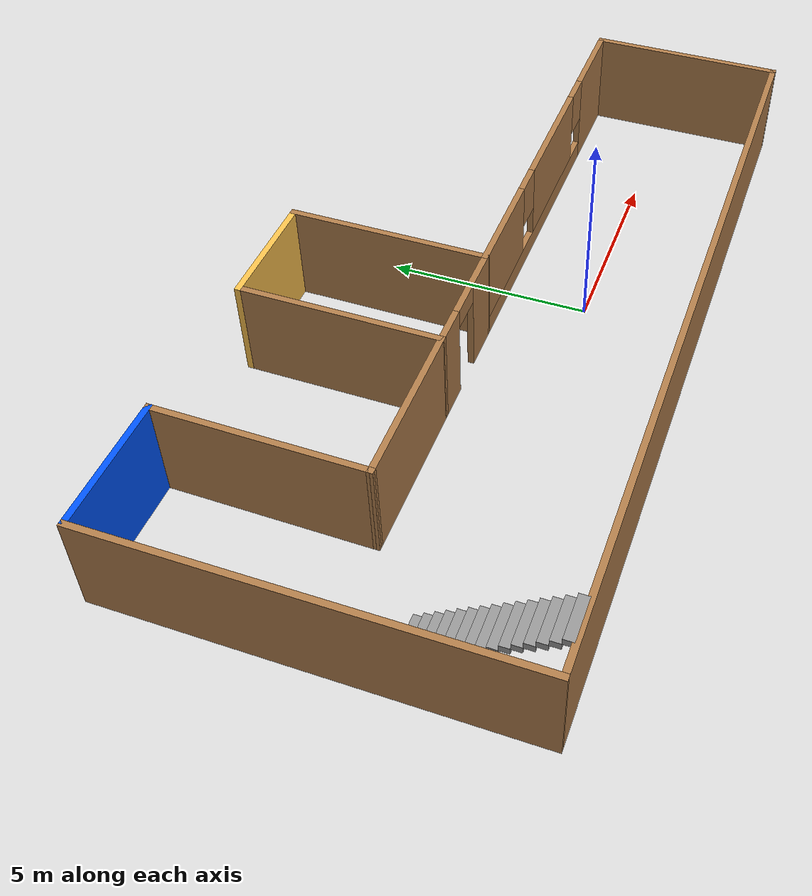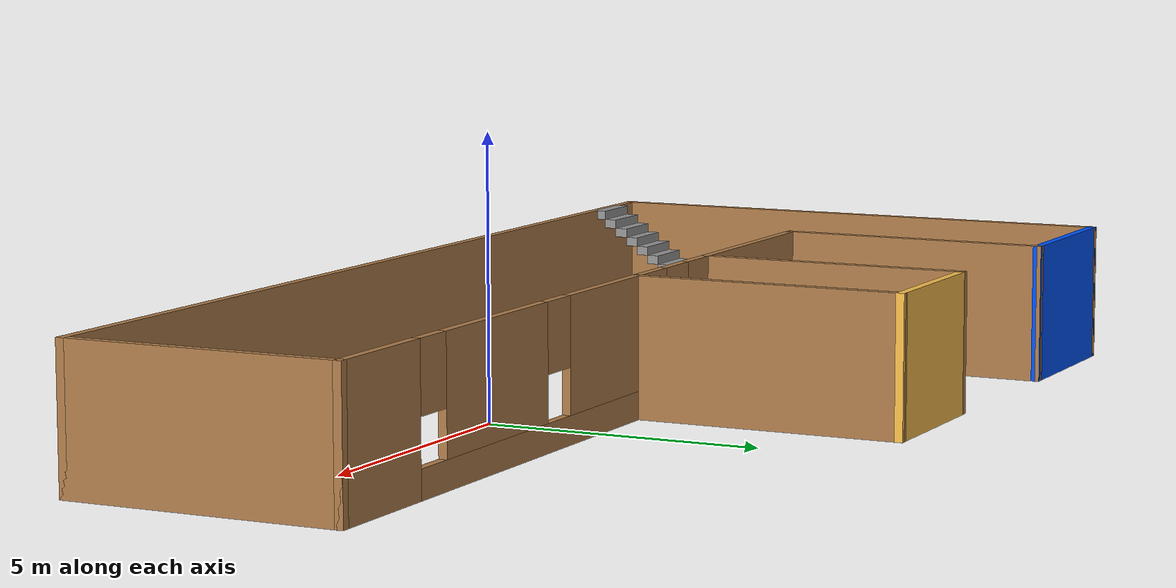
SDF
<?xml version='1.0'?>
<sdf version='1.6'>
  <model name='model'>
    <pose frame=''>-1.50268 2.09143 0 0 -0 0</pose>
    <link name='Stairs_0'>
      <visual name='Stairs_0_Visual_0'>
        <pose frame=''>-8.58325 -1.48655 0.083333 0 -0 0</pose>
        <geometry>
          <box>
            <size>1 0.233333 0.166667</size>
          </box>
        </geometry>
        <material>
          <script>
            <uri>file://media/materials/scripts/gazebo.material</uri>
            <name>Gazebo/Grey</name>
          </script>
          <ambient>1 1 1 1</ambient>
        </material>
        <meta>
          <layer>0</layer>
        </meta>
      </visual>
      <collision name='Stairs_0_Collision_0'>
        <geometry>
          <box>
            <size>1 0.233333 0.166667</size>
          </box>
        </geometry>
        <pose frame=''>-8.58325 -1.48655 0.083333 0 -0 0</pose>
      </collision>
      <visual name='Stairs_0_Visual_1'>
        <pose frame=''>-8.58325 -1.71988 0.25 0 -0 0</pose>
        <geometry>
          <box>
            <size>1 0.233333 0.166667</size>
          </box>
        </geometry>
        <material>
          <script>
            <uri>file://media/materials/scripts/gazebo.material</uri>
            <name>Gazebo/Grey</name>
          </script>
          <ambient>1 1 1 1</ambient>
        </material>
        <meta>
          <layer>0</layer>
        </meta>
      </visual>
      <collision name='Stairs_0_Collision_1'>
        <geometry>
          <box>
            <size>1 0.233333 0.166667</size>
          </box>
        </geometry>
        <pose frame=''>-8.58325 -1.71988 0.25 0 -0 0</pose>
      </collision>
      <visual name='Stairs_0_Visual_2'>
        <pose frame=''>-8.58325 -1.95321 0.416667 0 -0 0</pose>
        <geometry>
          <box>
            <size>1 0.233333 0.166667</size>
          </box>
        </geometry>
        <material>
          <script>
            <uri>file://media/materials/scripts/gazebo.material</uri>
            <name>Gazebo/Grey</name>
          </script>
          <ambient>1 1 1 1</ambient>
        </material>
        <meta>
          <layer>0</layer>
        </meta>
      </visual>
      <collision name='Stairs_0_Collision_2'>
        <geometry>
          <box>
            <size>1 0.233333 0.166667</size>
          </box>
        </geometry>
        <pose frame=''>-8.58325 -1.95321 0.416667 0 -0 0</pose>
      </collision>
      <visual name='Stairs_0_Visual_3'>
        <pose frame=''>-8.58325 -2.18655 0.583333 0 -0 0</pose>
        <geometry>
          <box>
            <size>1 0.233333 0.166667</size>
          </box>
        </geometry>
        <material>
          <script>
            <uri>file://media/materials/scripts/gazebo.material</uri>
            <name>Gazebo/Grey</name>
          </script>
          <ambient>1 1 1 1</ambient>
        </material>
        <meta>
          <layer>0</layer>
        </meta>
      </visual>
      <collision name='Stairs_0_Collision_3'>
        <geometry>
          <box>
            <size>1 0.233333 0.166667</size>
          </box>
        </geometry>
        <pose frame=''>-8.58325 -2.18655 0.583333 0 -0 0</pose>
      </collision>
      <visual name='Stairs_0_Visual_4'>
        <pose frame=''>-8.58325 -2.41988 0.75 0 -0 0</pose>
        <geometry>
          <box>
            <size>1 0.233333 0.166667</size>
          </box>
        </geometry>
        <material>
          <script>
            <uri>file://media/materials/scripts/gazebo.material</uri>
            <name>Gazebo/Grey</name>
          </script>
          <ambient>1 1 1 1</ambient>
        </material>
        <meta>
          <layer>0</layer>
        </meta>
      </visual>
      <collision name='Stairs_0_Collision_4'>
        <geometry>
          <box>
            <size>1 0.233333 0.166667</size>
          </box>
        </geometry>
        <pose frame=''>-8.58325 -2.41988 0.75 0 -0 0</pose>
      </collision>
      <visual name='Stairs_0_Visual_5'>
        <pose frame=''>-8.58325 -2.65321 0.916667 0 -0 0</pose>
        <geometry>
          <box>
            <size>1 0.233333 0.166667</size>
          </box>
        </geometry>
        <material>
          <script>
            <uri>file://media/materials/scripts/gazebo.material</uri>
            <name>Gazebo/Grey</name>
          </script>
          <ambient>1 1 1 1</ambient>
        </material>
        <meta>
          <layer>0</layer>
        </meta>
      </visual>
      <collision name='Stairs_0_Collision_5'>
        <geometry>
          <box>
            <size>1 0.233333 0.166667</size>
          </box>
        </geometry>
        <pose frame=''>-8.58325 -2.65321 0.916667 0 -0 0</pose>
      </collision>
      <visual name='Stairs_0_Visual_6'>
        <pose frame=''>-8.58325 -2.88655 1.08333 0 -0 0</pose>
        <geometry>
          <box>
            <size>1 0.233333 0.166667</size>
          </box>
        </geometry>
        <material>
          <script>
            <uri>file://media/materials/scripts/gazebo.material</uri>
            <name>Gazebo/Grey</name>
          </script>
          <ambient>1 1 1 1</ambient>
        </material>
        <meta>
          <layer>0</layer>
        </meta>
      </visual>
      <collision name='Stairs_0_Collision_6'>
        <geometry>
          <box>
            <size>1 0.233333 0.166667</size>
          </box>
        </geometry>
        <pose frame=''>-8.58325 -2.88655 1.08333 0 -0 0</pose>
      </collision>
      <visual name='Stairs_0_Visual_7'>
        <pose frame=''>-8.58325 -3.11988 1.25 0 -0 0</pose>
        <geometry>
          <box>
            <size>1 0.233333 0.166667</size>
          </box>
        </geometry>
        <material>
          <script>
            <uri>file://media/materials/scripts/gazebo.material</uri>
            <name>Gazebo/Grey</name>
          </script>
          <ambient>1 1 1 1</ambient>
        </material>
        <meta>
          <layer>0</layer>
        </meta>
      </visual>
      <collision name='Stairs_0_Collision_7'>
        <geometry>
          <box>
            <size>1 0.233333 0.166667</size>
          </box>
        </geometry>
        <pose frame=''>-8.58325 -3.11988 1.25 0 -0 0</pose>
      </collision>
      <visual name='Stairs_0_Visual_8'>
        <pose frame=''>-8.58325 -3.35321 1.41667 0 -0 0</pose>
        <geometry>
          <box>
            <size>1 0.233333 0.166667</size>
          </box>
        </geometry>
        <material>
          <script>
            <uri>file://media/materials/scripts/gazebo.material</uri>
            <name>Gazebo/Grey</name>
          </script>
          <ambient>1 1 1 1</ambient>
        </material>
        <meta>
          <layer>0</layer>
        </meta>
      </visual>
      <collision name='Stairs_0_Collision_8'>
        <geometry>
          <box>
            <size>1 0.233333 0.166667</size>
          </box>
        </geometry>
        <pose frame=''>-8.58325 -3.35321 1.41667 0 -0 0</pose>
      </collision>
      <visual name='Stairs_0_Visual_9'>
        <pose frame=''>-8.58325 -3.58655 1.58333 0 -0 0</pose>
        <geometry>
          <box>
            <size>1 0.233333 0.166667</size>
          </box>
        </geometry>
        <material>
          <script>
            <uri>file://media/materials/scripts/gazebo.material</uri>
            <name>Gazebo/Grey</name>
          </script>
          <ambient>1 1 1 1</ambient>
        </material>
        <meta>
          <layer>0</layer>
        </meta>
      </visual>
      <collision name='Stairs_0_Collision_9'>
        <geometry>
          <box>
            <size>1 0.233333 0.166667</size>
          </box>
        </geometry>
        <pose frame=''>-8.58325 -3.58655 1.58333 0 -0 0</pose>
      </collision>
      <visual name='Stairs_0_Visual_10'>
        <pose frame=''>-8.58325 -3.81988 1.75 0 -0 0</pose>
        <geometry>
          <box>
            <size>1 0.233333 0.166667</size>
          </box>
        </geometry>
        <material>
          <script>
            <uri>file://media/materials/scripts/gazebo.material</uri>
            <name>Gazebo/Grey</name>
          </script>
          <ambient>1 1 1 1</ambient>
        </material>
        <meta>
          <layer>0</layer>
        </meta>
      </visual>
      <collision name='Stairs_0_Collision_10'>
        <geometry>
          <box>
            <size>1 0.233333 0.166667</size>
          </box>
        </geometry>
        <pose frame=''>-8.58325 -3.81988 1.75 0 -0 0</pose>
      </collision>
      <visual name='Stairs_0_Visual_11'>
        <pose frame=''>-8.58325 -4.05321 1.91667 0 -0 0</pose>
        <geometry>
          <box>
            <size>1 0.233333 0.166667</size>
          </box>
        </geometry>
        <material>
          <script>
            <uri>file://media/materials/scripts/gazebo.material</uri>
            <name>Gazebo/Grey</name>
          </script>
          <ambient>1 1 1 1</ambient>
        </material>
        <meta>
          <layer>0</layer>
        </meta>
      </visual>
      <collision name='Stairs_0_Collision_11'>
        <geometry>
          <box>
            <size>1 0.233333 0.166667</size>
          </box>
        </geometry>
        <pose frame=''>-8.58325 -4.05321 1.91667 0 -0 0</pose>
      </collision>
      <visual name='Stairs_0_Visual_12'>
        <pose frame=''>-8.58325 -4.28655 2.08333 0 -0 0</pose>
        <geometry>
          <box>
            <size>1 0.233333 0.166667</size>
          </box>
        </geometry>
        <material>
          <script>
            <uri>file://media/materials/scripts/gazebo.material</uri>
            <name>Gazebo/Grey</name>
          </script>
          <ambient>1 1 1 1</ambient>
        </material>
        <meta>
          <layer>0</layer>
        </meta>
      </visual>
      <collision name='Stairs_0_Collision_12'>
        <geometry>
          <box>
            <size>1 0.233333 0.166667</size>
          </box>
        </geometry>
        <pose frame=''>-8.58325 -4.28655 2.08333 0 -0 0</pose>
      </collision>
      <visual name='Stairs_0_Visual_13'>
        <pose frame=''>-8.58325 -4.51988 2.25 0 -0 0</pose>
        <geometry>
          <box>
            <size>1 0.233333 0.166667</size>
          </box>
        </geometry>
        <material>
          <script>
            <uri>file://media/materials/scripts/gazebo.material</uri>
            <name>Gazebo/Grey</name>
          </script>
          <ambient>1 1 1 1</ambient>
        </material>
        <meta>
          <layer>0</layer>
        </meta>
      </visual>
      <collision name='Stairs_0_Collision_13'>
        <geometry>
          <box>
            <size>1 0.233333 0.166667</size>
          </box>
        </geometry>
        <pose frame=''>-8.58325 -4.51988 2.25 0 -0 0</pose>
      </collision>
      <visual name='Stairs_0_Visual_14'>
        <pose frame=''>-8.58325 -4.75321 2.41667 0 -0 0</pose>
        <geometry>
          <box>
            <size>1 0.233333 0.166667</size>
          </box>
        </geometry>
        <material>
          <script>
            <uri>file://media/materials/scripts/gazebo.material</uri>
            <name>Gazebo/Grey</name>
          </script>
          <ambient>1 1 1 1</ambient>
        </material>
        <meta>
          <layer>0</layer>
        </meta>
      </visual>
      <collision name='Stairs_0_Collision_14'>
        <geometry>
          <box>
            <size>1 0.233333 0.166667</size>
          </box>
        </geometry>
        <pose frame=''>-8.58325 -4.75321 2.41667 0 -0 0</pose>
      </collision>
    </link>
    <link name='Wall_0'>
      <collision name='Wall_0_Collision'>
        <geometry>
          <box>
            <size>9.9322 0.15 2.5</size>
          </box>
        </geometry>
        <pose frame=''>0 0 1.25 0 -0 0</pose>
      </collision>
      <visual name='Wall_0_Visual'>
        <pose frame=''>0 0 1.25 0 -0 0</pose>
        <geometry>
          <box>
            <size>9.9322 0.15 2.5</size>
          </box>
        </geometry>
        <material>
          <script>
            <uri>file://media/materials/scripts/gazebo.material</uri>
            <name>Gazebo/Wood</name>
          </script>
          <ambient>1 1 1 1</ambient>
        </material>
        <meta>
          <layer>0</layer>
        </meta>
      </visual>
      <pose frame=''>-9.79101 0 0 0 -0 -1.56452</pose>
    </link>
    <link name='Wall_10'>
      <collision name='Wall_10_Collision'>
        <geometry>
          <box>
            <size>3 0.15 2.5</size>
          </box>
        </geometry>
        <pose frame=''>0 0 1.25 0 -0 0</pose>
      </collision>
      <visual name='Wall_10_Visual'>
        <pose frame=''>0 0 1.25 0 -0 0</pose>
        <geometry>
          <box>
            <size>3 0.15 2.5</size>
          </box>
        </geometry>
        <material>
          <script>
            <uri>file://media/materials/scripts/gazebo.material</uri>
            <name>Gazebo/Grey</name>
          </script>
          <ambient>1 0.764706 0.305882 1</ambient>
        </material>
        <meta>
          <layer>0</layer>
        </meta>
      </visual>
      <pose frame=''>-1.45257 4.80878 0 0 -0 -3.14144</pose>
    </link>
    <link name='Wall_12'>
      <collision name='Wall_12_Collision'>
        <geometry>
          <box>
            <size>5 0.15 2.5</size>
          </box>
        </geometry>
        <pose frame=''>0 0 1.25 0 -0 0</pose>
      </collision>
      <visual name='Wall_12_Visual'>
        <pose frame=''>0 0 1.25 0 -0 0</pose>
        <geometry>
          <box>
            <size>5 0.15 2.5</size>
          </box>
        </geometry>
        <material>
          <script>
            <uri>file://media/materials/scripts/gazebo.material</uri>
            <name>Gazebo/Wood</name>
          </script>
          <ambient>1 1 1 1</ambient>
        </material>
        <meta>
          <layer>0</layer>
        </meta>
      </visual>
      <pose frame=''>-2.87732 2.38357 0 0 -0 -1.5708</pose>
    </link>
    <link name='Wall_14'>
      <collision name='Wall_14_Collision'>
        <geometry>
          <box>
            <size>4 0.15 2.5</size>
          </box>
        </geometry>
        <pose frame=''>0 0 1.25 0 -0 0</pose>
      </collision>
      <visual name='Wall_14_Visual'>
        <pose frame=''>0 0 1.25 0 -0 0</pose>
        <geometry>
          <box>
            <size>4 0.15 2.5</size>
          </box>
        </geometry>
        <material>
          <script>
            <uri>file://media/materials/scripts/gazebo.material</uri>
            <name>Gazebo/Wood</name>
          </script>
          <ambient>1 1 1 1</ambient>
        </material>
        <meta>
          <layer>0</layer>
        </meta>
      </visual>
      <pose frame=''>-4.80232 -0.041434 0 0 -0 3.14159</pose>
    </link>
    <link name='Wall_18'>
      <collision name='Wall_18_Collision'>
        <geometry>
          <box>
            <size>5.08249 0.15 2.5</size>
          </box>
        </geometry>
        <pose frame=''>0 0 1.25 0 -0 0</pose>
      </collision>
      <visual name='Wall_18_Visual'>
        <pose frame=''>0 0 1.25 0 -0 0</pose>
        <geometry>
          <box>
            <size>5.08249 0.15 2.5</size>
          </box>
        </geometry>
        <material>
          <script>
            <uri>file://media/materials/scripts/gazebo.material</uri>
            <name>Gazebo/Wood</name>
          </script>
          <ambient>1 1 1 1</ambient>
        </material>
        <meta>
          <layer>0</layer>
        </meta>
      </visual>
      <pose frame=''>-6.71528 2.42478 0 0 -0 1.56591</pose>
    </link>
    <link name='Wall_2'>
      <collision name='Wall_2_Collision'>
        <geometry>
          <box>
            <size>19.679 0.15 2.5</size>
          </box>
        </geometry>
        <pose frame=''>0 0 1.25 0 -0 0</pose>
      </collision>
      <visual name='Wall_2_Visual'>
        <pose frame=''>0 0 1.25 0 -0 0</pose>
        <geometry>
          <box>
            <size>19.679 0.15 2.5</size>
          </box>
        </geometry>
        <material>
          <script>
            <uri>file://media/materials/scripts/gazebo.material</uri>
            <name>Gazebo/Wood</name>
          </script>
          <ambient>1 1 1 1</ambient>
        </material>
        <meta>
          <layer>0</layer>
        </meta>
      </visual>
      <pose frame=''>0.05769 -4.891 0 0 -0 0</pose>
    </link>
    <link name='Wall_20'>
      <collision name='Wall_20_Collision'>
        <geometry>
          <box>
            <size>3.21497 0.15 2.5</size>
          </box>
        </geometry>
        <pose frame=''>0 0 1.25 0 -0 0</pose>
      </collision>
      <visual name='Wall_20_Visual'>
        <pose frame=''>0 0 1.25 0 -0 0</pose>
        <geometry>
          <box>
            <size>3.21497 0.15 2.5</size>
          </box>
        </geometry>
        <material>
          <script>
            <uri>file://media/materials/scripts/gazebo.material</uri>
            <name>Gazebo/Grey</name>
          </script>
          <ambient>0 0.333333 1 1</ambient>
        </material>
        <meta>
          <layer>0</layer>
        </meta>
      </visual>
      <pose frame=''>-8.23572 4.891 0 0 -0 3.14159</pose>
    </link>
    <link name='Wall_24'>
      <pose frame=''>-1.45257 -0.041218 0 0 -0 -3.14144</pose>
      <visual name='Wall_24_Visual_0'>
        <pose frame=''>-0.940715 0 1.25 0 -0 0</pose>
        <geometry>
          <box>
            <size>1.11807 0.15 2.5</size>
          </box>
        </geometry>
        <material>
          <script>
            <uri>file://media/materials/scripts/gazebo.material</uri>
            <name>Gazebo/Wood</name>
          </script>
          <ambient>1 1 1 1</ambient>
        </material>
        <meta>
          <layer>0</layer>
        </meta>
      </visual>
      <collision name='Wall_24_Collision_0'>
        <geometry>
          <box>
            <size>1.11807 0.15 2.5</size>
          </box>
        </geometry>
        <pose frame=''>-0.940715 0 1.25 0 -0 0</pose>
      </collision>
      <visual name='Wall_24_Visual_1'>
        <pose frame=''>1.00904 0 1.25 0 -0 0</pose>
        <geometry>
          <box>
            <size>0.98143 0.15 2.5</size>
          </box>
        </geometry>
        <material>
          <script>
            <uri>file://media/materials/scripts/gazebo.material</uri>
            <name>Gazebo/Wood</name>
          </script>
          <ambient>1 1 1 1</ambient>
        </material>
        <meta>
          <layer>0</layer>
        </meta>
      </visual>
      <collision name='Wall_24_Collision_1'>
        <geometry>
          <box>
            <size>0.98143 0.15 2.5</size>
          </box>
        </geometry>
        <pose frame=''>1.00904 0 1.25 0 -0 0</pose>
      </collision>
      <visual name='Wall_24_Visual_2'>
        <pose frame=''>0.068322 0 2.25 0 -0 0</pose>
        <geometry>
          <box>
            <size>0.9 0.15 0.5</size>
          </box>
        </geometry>
        <material>
          <script>
            <uri>file://media/materials/scripts/gazebo.material</uri>
            <name>Gazebo/Wood</name>
          </script>
          <ambient>1 1 1 1</ambient>
        </material>
        <meta>
          <layer>0</layer>
        </meta>
      </visual>
      <collision name='Wall_24_Collision_2'>
        <geometry>
          <box>
            <size>0.9 0.15 0.5</size>
          </box>
        </geometry>
        <pose frame=''>0.068322 0 2.25 0 -0 0</pose>
      </collision>
    </link>
    <link name='Wall_4'>
      <collision name='Wall_4_Collision'>
        <geometry>
          <box>
            <size>5 0.15 2.5</size>
          </box>
        </geometry>
        <pose frame=''>0 0 1.25 0 -0 0</pose>
      </collision>
      <visual name='Wall_4_Visual'>
        <pose frame=''>0 0 1.25 0 -0 0</pose>
        <geometry>
          <box>
            <size>5 0.15 2.5</size>
          </box>
        </geometry>
        <material>
          <script>
            <uri>file://media/materials/scripts/gazebo.material</uri>
            <name>Gazebo/Wood</name>
          </script>
          <ambient>1 1 1 1</ambient>
        </material>
        <meta>
          <layer>0</layer>
        </meta>
      </visual>
      <pose frame=''>9.82218 -2.466 0 0 -0 1.5708</pose>
    </link>
    <link name='Wall_6'>
      <pose frame=''>4.89718 -0.041003 0 0 -0 3.14159</pose>
      <visual name='Wall_6_Visual_0'>
        <pose frame=''>-3.8514 0 1.25 0 -0 0</pose>
        <geometry>
          <box>
            <size>2.29719 0.15 2.5</size>
          </box>
        </geometry>
        <material>
          <script>
            <uri>file://media/materials/scripts/gazebo.material</uri>
            <name>Gazebo/Wood</name>
          </script>
          <ambient>1 1 1 1</ambient>
        </material>
        <meta>
          <layer>0</layer>
        </meta>
      </visual>
      <collision name='Wall_6_Collision_0'>
        <geometry>
          <box>
            <size>2.29719 0.15 2.5</size>
          </box>
        </geometry>
        <pose frame=''>-3.8514 0 1.25 0 -0 0</pose>
      </collision>
      <visual name='Wall_6_Visual_1'>
        <pose frame=''>1.1486 0 0.25 0 -0 0</pose>
        <geometry>
          <box>
            <size>7.7028 0.15 0.5</size>
          </box>
        </geometry>
        <material>
          <script>
            <uri>file://media/materials/scripts/gazebo.material</uri>
            <name>Gazebo/Wood</name>
          </script>
          <ambient>1 1 1 1</ambient>
        </material>
        <meta>
          <layer>0</layer>
        </meta>
      </visual>
      <collision name='Wall_6_Collision_1'>
        <geometry>
          <box>
            <size>7.7028 0.15 0.5</size>
          </box>
        </geometry>
        <pose frame=''>1.1486 0 0.25 0 -0 0</pose>
      </collision>
      <visual name='Wall_6_Visual_2'>
        <pose frame=''>-0.216208 0 1.5 0 -0 0</pose>
        <geometry>
          <box>
            <size>3.37319 0.15 2</size>
          </box>
        </geometry>
        <material>
          <script>
            <uri>file://media/materials/scripts/gazebo.material</uri>
            <name>Gazebo/Wood</name>
          </script>
          <ambient>1 1 1 1</ambient>
        </material>
        <meta>
          <layer>0</layer>
        </meta>
      </visual>
      <collision name='Wall_6_Collision_2'>
        <geometry>
          <box>
            <size>3.37319 0.15 2</size>
          </box>
        </geometry>
        <pose frame=''>-0.216208 0 1.5 0 -0 0</pose>
      </collision>
      <visual name='Wall_6_Visual_3'>
        <pose frame=''>3.63519 0 1.5 0 -0 0</pose>
        <geometry>
          <box>
            <size>2.72961 0.15 2</size>
          </box>
        </geometry>
        <material>
          <script>
            <uri>file://media/materials/scripts/gazebo.material</uri>
            <name>Gazebo/Wood</name>
          </script>
          <ambient>1 1 1 1</ambient>
        </material>
        <meta>
          <layer>0</layer>
        </meta>
      </visual>
      <collision name='Wall_6_Collision_3'>
        <geometry>
          <box>
            <size>2.72961 0.15 2</size>
          </box>
        </geometry>
        <pose frame=''>3.63519 0 1.5 0 -0 0</pose>
      </collision>
      <visual name='Wall_6_Visual_4'>
        <pose frame=''>-2.30281 0 1.9 0 -0 0</pose>
        <geometry>
          <box>
            <size>0.8 0.15 1.2</size>
          </box>
        </geometry>
        <material>
          <script>
            <uri>file://media/materials/scripts/gazebo.material</uri>
            <name>Gazebo/Wood</name>
          </script>
          <ambient>1 1 1 1</ambient>
        </material>
        <meta>
          <layer>0</layer>
        </meta>
      </visual>
      <collision name='Wall_6_Collision_4'>
        <geometry>
          <box>
            <size>0.8 0.15 1.2</size>
          </box>
        </geometry>
        <pose frame=''>-2.30281 0 1.9 0 -0 0</pose>
      </collision>
      <visual name='Wall_6_Visual_5'>
        <pose frame=''>1.87039 0 1.9 0 -0 0</pose>
        <geometry>
          <box>
            <size>0.8 0.15 1.2</size>
          </box>
        </geometry>
        <material>
          <script>
            <uri>file://media/materials/scripts/gazebo.material</uri>
            <name>Gazebo/Wood</name>
          </script>
          <ambient>1 1 1 1</ambient>
        </material>
        <meta>
          <layer>0</layer>
        </meta>
      </visual>
      <collision name='Wall_6_Collision_5'>
        <geometry>
          <box>
            <size>0.8 0.15 1.2</size>
          </box>
        </geometry>
        <pose frame=''>1.87039 0 1.9 0 -0 0</pose>
      </collision>
    </link>
    <link name='Wall_8'>
      <collision name='Wall_8_Collision'>
        <geometry>
          <box>
            <size>5 0.15 2.5</size>
          </box>
        </geometry>
        <pose frame=''>0 0 1.25 0 -0 0</pose>
      </collision>
      <visual name='Wall_8_Visual'>
        <pose frame=''>0 0 1.25 0 -0 0</pose>
        <geometry>
          <box>
            <size>5 0.15 2.5</size>
          </box>
        </geometry>
        <material>
          <script>
            <uri>file://media/materials/scripts/gazebo.material</uri>
            <name>Gazebo/Wood</name>
          </script>
          <ambient>1 1 1 1</ambient>
        </material>
        <meta>
          <layer>0</layer>
        </meta>
      </visual>
      <pose frame=''>-0.027818 2.384 0 0 -0 1.5708</pose>
    </link>
    <static>1</static>
  </model>
</sdf>
